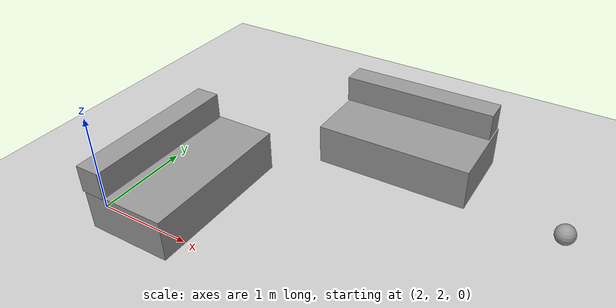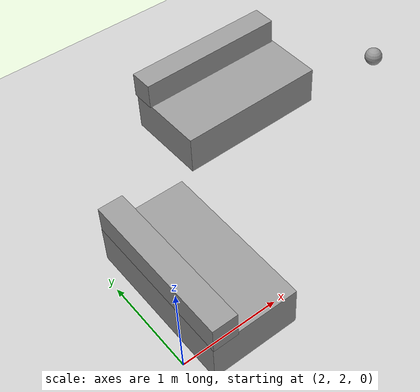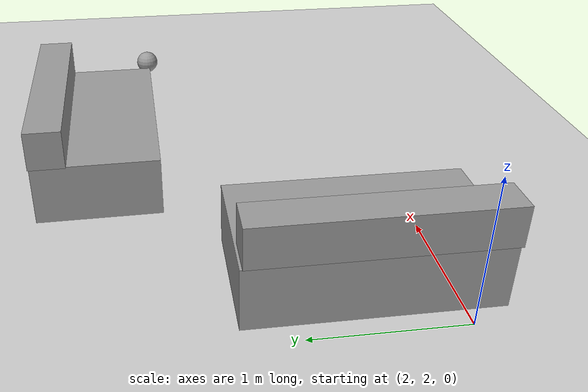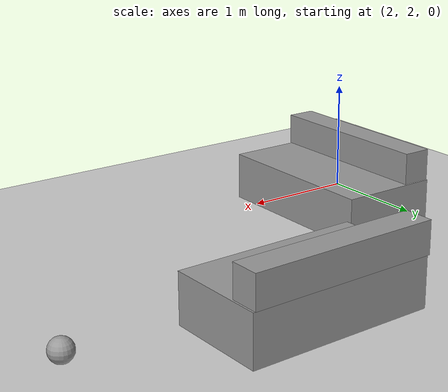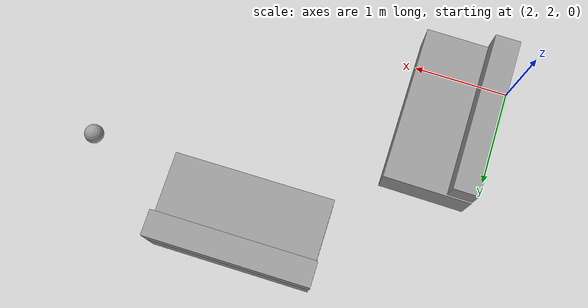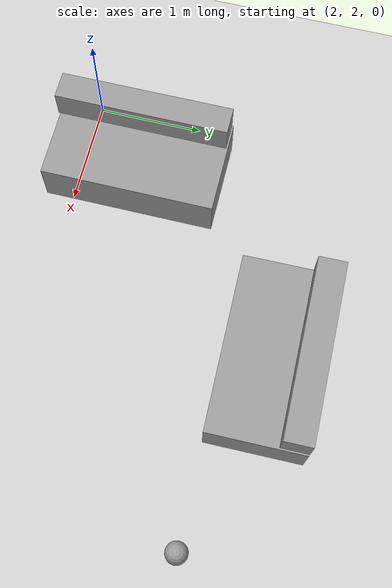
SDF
<sdf version="1.6">
 <world name="default">
  <model name="ground_plane">
   <static>1</static>
   <link name="link">
    <collision name="collision">
     <geometry><plane><normal>0 0 1</normal><size>100 100</size></plane></geometry>
     <surface><friction><ode><mu>100</mu><mu2>50</mu2></ode></friction></surface>
    </collision>
    <visual name="visual">
     <cast_shadows>0</cast_shadows>
     <geometry><plane><normal>0 0 1</normal><size>100 100</size></plane></geometry>
     <material>
      <script><uri>file://media/materials/scripts/gazebo.material</uri><name>Gazebo/Grey</name></script>
     </material>
    </visual>
   </link>
  </model>
  <model name="sofav1">
   <link name="link_0">
    <pose>0.16125 0.008125 -0.1778 0 -0 0</pose>
    <inertial>
     <mass>1</mass>
     <inertia>
      <ixx>0.166667</ixx>
      <ixy>0</ixy>
      <ixz>0</ixz>
      <iyy>0.166667</iyy>
      <iyz>0</iyz>
      <izz>0.166667</izz>
     </inertia>
    </inertial>
    <visual name="visual">
     <geometry><box><size>0.889 1.6256 0.4318</size></box></geometry>
     <material>
      <lighting>1</lighting>
      <script><uri>file://media/materials/scripts/gazebo.material</uri><name>Gazebo/Grey</name></script>
      <shader type="pixel"><normal_map>__default__</normal_map></shader>
      <ambient>0.3 0.3 0.3 1</ambient>
      <diffuse>0.7 0.7 0.7 1</diffuse>
      <specular>0.01 0.01 0.01 1</specular>
      <emissive>0 0 0 1</emissive>
     </material>
    </visual>
    <collision name="collision">
     <geometry><box><size>0.889 1.625 0.4318</size></box></geometry>
     <surface>
      <friction>
       <ode><mu>1</mu><mu2>1</mu2><fdir1>0 0 0</fdir1><slip1>0</slip1><slip2>0</slip2></ode>
       <torsional>
        <coefficient>1</coefficient>
        <patch_radius>0</patch_radius>
        <surface_radius>0</surface_radius>
        <use_patch_radius>1</use_patch_radius>
        <ode><slip>0</slip></ode>
       </torsional>
      </friction>
      <bounce><restitution_coefficient>0</restitution_coefficient><threshold>1e+06</threshold></bounce>
      <contact>
       <collide_without_contact>0</collide_without_contact>
       <collide_without_contact_bitmask>1</collide_without_contact_bitmask>
       <collide_bitmask>1</collide_bitmask>
       <ode>
        <soft_cfm>0</soft_cfm>
        <soft_erp>0.2</soft_erp>
        <kp>1e+13</kp>
        <kd>1</kd>
        <max_vel>0.01</max_vel>
        <min_depth>0</min_depth>
       </ode>
       <bullet>
        <split_impulse>1</split_impulse>
        <split_impulse_penetration_threshold>-0.01</split_impulse_penetration_threshold>
        <soft_cfm>0</soft_cfm>
        <soft_erp>0.2</soft_erp>
        <kp>1e+13</kp>
        <kd>1</kd>
       </bullet>
      </contact>
     </surface>
    </collision>
   </link>
   <link name="link_1">
    <pose>-0.161251 -0.008125 0.1778 0 -0 0</pose>
    <inertial>
     <mass>1</mass>
     <inertia>
      <ixx>0.166667</ixx>
      <ixy>0</ixy>
      <ixz>0</ixz>
      <iyy>0.166667</iyy>
      <iyz>0</iyz>
      <izz>0.166667</izz>
     </inertia>
    </inertial>
    <visual name="visual">
     <geometry><box><size>0.254 1.6256 0.2794</size></box></geometry>
     <material>
      <lighting>1</lighting>
      <script><uri>file://media/materials/scripts/gazebo.material</uri><name>Gazebo/Grey</name></script>
      <shader type="pixel"><normal_map>__default__</normal_map></shader>
      <ambient>0.3 0.3 0.3 1</ambient>
      <diffuse>0.7 0.7 0.7 1</diffuse>
      <specular>0.01 0.01 0.01 1</specular>
      <emissive>0 0 0 1</emissive>
     </material>
    </visual>
    <collision name="collision">
     <geometry><box><size>0.254 1.6256 0.2794</size></box></geometry>
     <surface>
      <friction>
       <ode><mu>1</mu><mu2>1</mu2><fdir1>0 0 0</fdir1><slip1>0</slip1><slip2>0</slip2></ode>
       <torsional>
        <coefficient>1</coefficient>
        <patch_radius>0</patch_radius>
        <surface_radius>0</surface_radius>
        <use_patch_radius>1</use_patch_radius>
        <ode><slip>0</slip></ode>
       </torsional>
      </friction>
      <bounce><restitution_coefficient>0</restitution_coefficient><threshold>1e+06</threshold></bounce>
      <contact>
       <collide_without_contact>0</collide_without_contact>
       <collide_without_contact_bitmask>1</collide_without_contact_bitmask>
       <collide_bitmask>1</collide_bitmask>
       <ode>
        <soft_cfm>0</soft_cfm>
        <soft_erp>0.2</soft_erp>
        <kp>1e+13</kp>
        <kd>1</kd>
        <max_vel>0.01</max_vel>
        <min_depth>0</min_depth>
       </ode>
       <bullet>
        <split_impulse>1</split_impulse>
        <split_impulse_penetration_threshold>-0.01</split_impulse_penetration_threshold>
        <soft_cfm>0</soft_cfm>
        <soft_erp>0.2</soft_erp>
        <kp>1e+13</kp>
        <kd>1</kd>
       </bullet>
      </contact>
     </surface>
    </collision>
   </link>
   <joint name="link_0_JOINT_0" type="revolute">
    <parent>link_0</parent>
    <child>link_1</child>
    <axis>
     <xyz>0 0 1</xyz>
     <use_parent_model_frame>0</use_parent_model_frame>
     <limit>
      <lower>-1.79769e+308</lower>
      <upper>1.79769e+308</upper>
      <effort>-1</effort>
      <velocity>-1</velocity>
     </limit>
     <dynamics>
      <spring_reference>0</spring_reference>
      <spring_stiffness>0</spring_stiffness>
      <damping>0</damping>
     </dynamics>
    </axis>
    <physics>
     <ode><limit><cfm>0</cfm><erp>0.2</erp></limit><suspension><cfm>0</cfm><erp>0.2</erp></suspension></ode>
    </physics>
   </joint>
   <static>0</static>
   <pose>2.41162 2.53942 0.393701 -0 -2e-06 2e-06</pose>
  </model>
  <model name="sofav1_clone">
   <link name="link_0">
    <pose>0.16125 0.008125 -0.1778 0 -0 0</pose>
    <inertial>
     <mass>1</mass>
     <inertia>
      <ixx>0.166667</ixx>
      <ixy>0</ixy>
      <ixz>0</ixz>
      <iyy>0.166667</iyy>
      <iyz>0</iyz>
      <izz>0.166667</izz>
     </inertia>
    </inertial>
    <visual name="visual">
     <geometry><box><size>0.889 1.6256 0.4318</size></box></geometry>
     <material>
      <lighting>1</lighting>
      <script><uri>file://media/materials/scripts/gazebo.material</uri><name>Gazebo/Grey</name></script>
      <shader type="pixel"><normal_map>__default__</normal_map></shader>
      <ambient>0.3 0.3 0.3 1</ambient>
      <diffuse>0.7 0.7 0.7 1</diffuse>
      <specular>0.01 0.01 0.01 1</specular>
      <emissive>0 0 0 1</emissive>
     </material>
    </visual>
    <collision name="collision">
     <geometry><box><size>0.889 1.625 0.4318</size></box></geometry>
     <surface>
      <friction>
       <ode><mu>1</mu><mu2>1</mu2><fdir1>0 0 0</fdir1><slip1>0</slip1><slip2>0</slip2></ode>
       <torsional>
        <coefficient>1</coefficient>
        <patch_radius>0</patch_radius>
        <surface_radius>0</surface_radius>
        <use_patch_radius>1</use_patch_radius>
        <ode><slip>0</slip></ode>
       </torsional>
      </friction>
      <bounce><restitution_coefficient>0</restitution_coefficient><threshold>1e+06</threshold></bounce>
      <contact>
       <collide_without_contact>0</collide_without_contact>
       <collide_without_contact_bitmask>1</collide_without_contact_bitmask>
       <collide_bitmask>1</collide_bitmask>
       <ode>
        <soft_cfm>0</soft_cfm>
        <soft_erp>0.2</soft_erp>
        <kp>1e+13</kp>
        <kd>1</kd>
        <max_vel>0.01</max_vel>
        <min_depth>0</min_depth>
       </ode>
       <bullet>
        <split_impulse>1</split_impulse>
        <split_impulse_penetration_threshold>-0.01</split_impulse_penetration_threshold>
        <soft_cfm>0</soft_cfm>
        <soft_erp>0.2</soft_erp>
        <kp>1e+13</kp>
        <kd>1</kd>
       </bullet>
      </contact>
     </surface>
    </collision>
   </link>
   <link name="link_1">
    <pose>-0.161251 -0.008125 0.1778 0 -0 0</pose>
    <inertial>
     <mass>1</mass>
     <inertia>
      <ixx>0.166667</ixx>
      <ixy>0</ixy>
      <ixz>0</ixz>
      <iyy>0.166667</iyy>
      <iyz>0</iyz>
      <izz>0.166667</izz>
     </inertia>
    </inertial>
    <visual name="visual">
     <geometry><box><size>0.254 1.6256 0.2794</size></box></geometry>
     <material>
      <lighting>1</lighting>
      <script><uri>file://media/materials/scripts/gazebo.material</uri><name>Gazebo/Grey</name></script>
      <shader type="pixel"><normal_map>__default__</normal_map></shader>
      <ambient>0.3 0.3 0.3 1</ambient>
      <diffuse>0.7 0.7 0.7 1</diffuse>
      <specular>0.01 0.01 0.01 1</specular>
      <emissive>0 0 0 1</emissive>
     </material>
    </visual>
    <collision name="collision">
     <geometry><box><size>0.254 1.6256 0.2794</size></box></geometry>
     <surface>
      <friction>
       <ode><mu>1</mu><mu2>1</mu2><fdir1>0 0 0</fdir1><slip1>0</slip1><slip2>0</slip2></ode>
       <torsional>
        <coefficient>1</coefficient>
        <patch_radius>0</patch_radius>
        <surface_radius>0</surface_radius>
        <use_patch_radius>1</use_patch_radius>
        <ode><slip>0</slip></ode>
       </torsional>
      </friction>
      <bounce><restitution_coefficient>0</restitution_coefficient><threshold>1e+06</threshold></bounce>
      <contact>
       <collide_without_contact>0</collide_without_contact>
       <collide_without_contact_bitmask>1</collide_without_contact_bitmask>
       <collide_bitmask>1</collide_bitmask>
       <ode>
        <soft_cfm>0</soft_cfm>
        <soft_erp>0.2</soft_erp>
        <kp>1e+13</kp>
        <kd>1</kd>
        <max_vel>0.01</max_vel>
        <min_depth>0</min_depth>
       </ode>
       <bullet>
        <split_impulse>1</split_impulse>
        <split_impulse_penetration_threshold>-0.01</split_impulse_penetration_threshold>
        <soft_cfm>0</soft_cfm>
        <soft_erp>0.2</soft_erp>
        <kp>1e+13</kp>
        <kd>1</kd>
       </bullet>
      </contact>
     </surface>
    </collision>
   </link>
   <joint name="link_0_JOINT_0" type="revolute">
    <parent>link_0</parent>
    <child>link_1</child>
    <axis>
     <xyz>0 0 1</xyz>
     <use_parent_model_frame>0</use_parent_model_frame>
     <limit>
      <lower>-1.79769e+308</lower>
      <upper>1.79769e+308</upper>
      <effort>-1</effort>
      <velocity>-1</velocity>
     </limit>
     <dynamics>
      <spring_reference>0</spring_reference>
      <spring_stiffness>0</spring_stiffness>
      <damping>0</damping>
     </dynamics>
    </axis>
    <physics>
     <ode><limit><cfm>0</cfm><erp>0.2</erp></limit><suspension><cfm>0</cfm><erp>0.2</erp></suspension></ode>
    </physics>
   </joint>
   <static>0</static>
   <pose>4.18858 4.351 0.393694 0 -9e-06 -1.55569</pose>
  </model>
  <model name="my_ball">
   <link name="link_0">
    <inertial>
     <mass>1</mass>
     <inertia><ixx>0.1</ixx><ixy>0</ixy><ixz>0</ixz><iyy>0.1</iyy><iyz>0</iyz><izz>0.1</izz></inertia>
    </inertial>
    <visual name="visual">
     <geometry><sphere><radius>0.1</radius></sphere></geometry>
     <material>
      <lighting>1</lighting>
      <script><uri>file://media/materials/scripts/gazebo.material</uri><name>Gazebo/Grey</name></script>
      <shader type="pixel"><normal_map>__default__</normal_map></shader>
      <ambient>1 1 1 1</ambient>
      <diffuse>1 1 1 1</diffuse>
      <specular>1 1 1 1</specular>
      <emissive>1 1 1 1</emissive>
     </material>
    </visual>
    <collision name="collision">
     <geometry><sphere><radius>0.1</radius></sphere></geometry>
     <surface>
      <friction>
       <ode><mu>1</mu><mu2>1</mu2><fdir1>0 0 0</fdir1><slip1>0</slip1><slip2>0</slip2></ode>
       <torsional>
        <coefficient>1</coefficient>
        <patch_radius>0</patch_radius>
        <surface_radius>0</surface_radius>
        <use_patch_radius>1</use_patch_radius>
        <ode><slip>0</slip></ode>
       </torsional>
      </friction>
      <bounce><restitution_coefficient>0</restitution_coefficient><threshold>1e+06</threshold></bounce>
      <contact>
       <collide_without_contact>0</collide_without_contact>
       <collide_without_contact_bitmask>1</collide_without_contact_bitmask>
       <collide_bitmask>1</collide_bitmask>
       <ode>
        <soft_cfm>0</soft_cfm>
        <soft_erp>0.2</soft_erp>
        <kp>1e+13</kp>
        <kd>1</kd>
        <max_vel>0.01</max_vel>
        <min_depth>0</min_depth>
       </ode>
       <bullet>
        <split_impulse>1</split_impulse>
        <split_impulse_penetration_threshold>-0.01</split_impulse_penetration_threshold>
        <soft_cfm>0</soft_cfm>
        <soft_erp>0.2</soft_erp>
        <kp>1e+13</kp>
        <kd>1</kd>
       </bullet>
      </contact>
     </surface>
    </collision>
   </link>
   <static>0</static>
   <pose>5.97623 3.77128 0.1 0 -0 0</pose>
  </model>
 </world>
</sdf>
